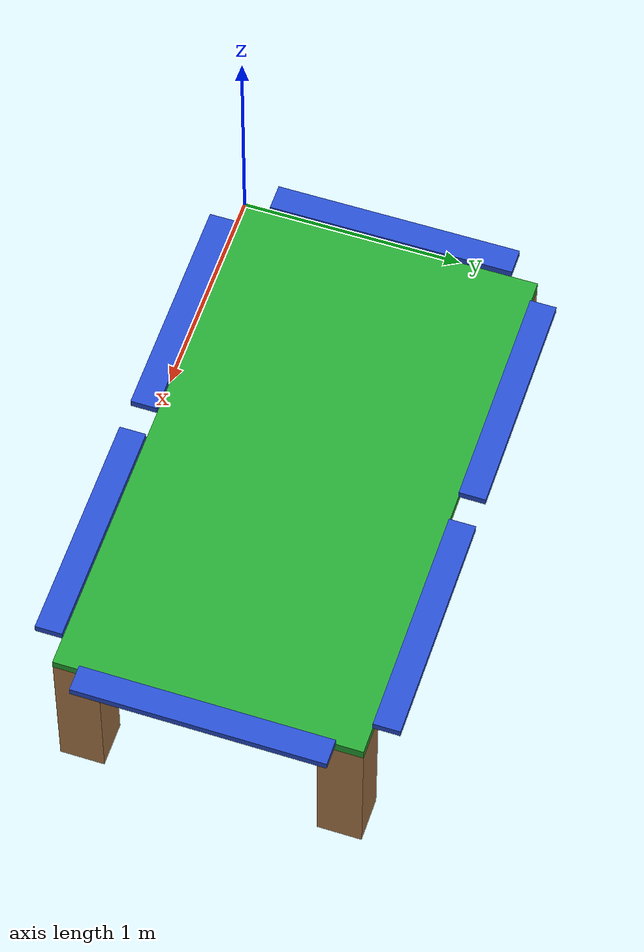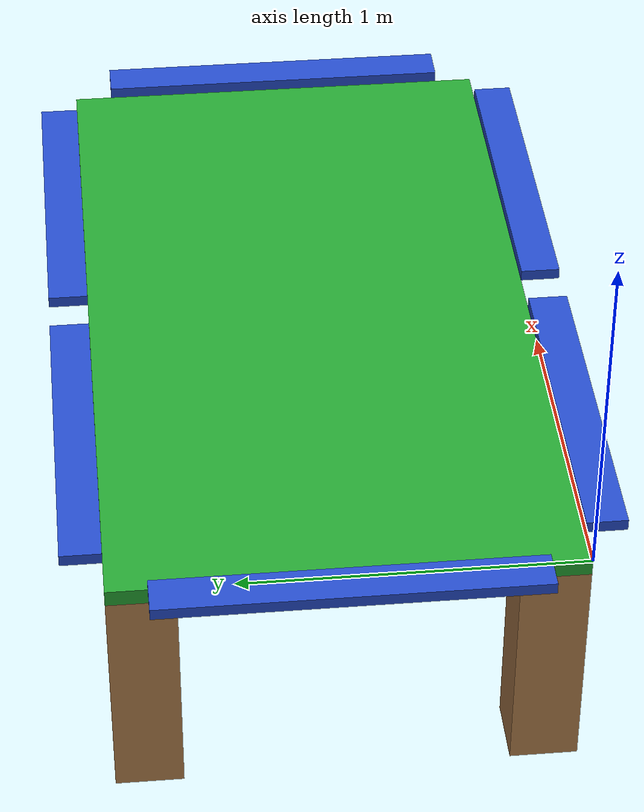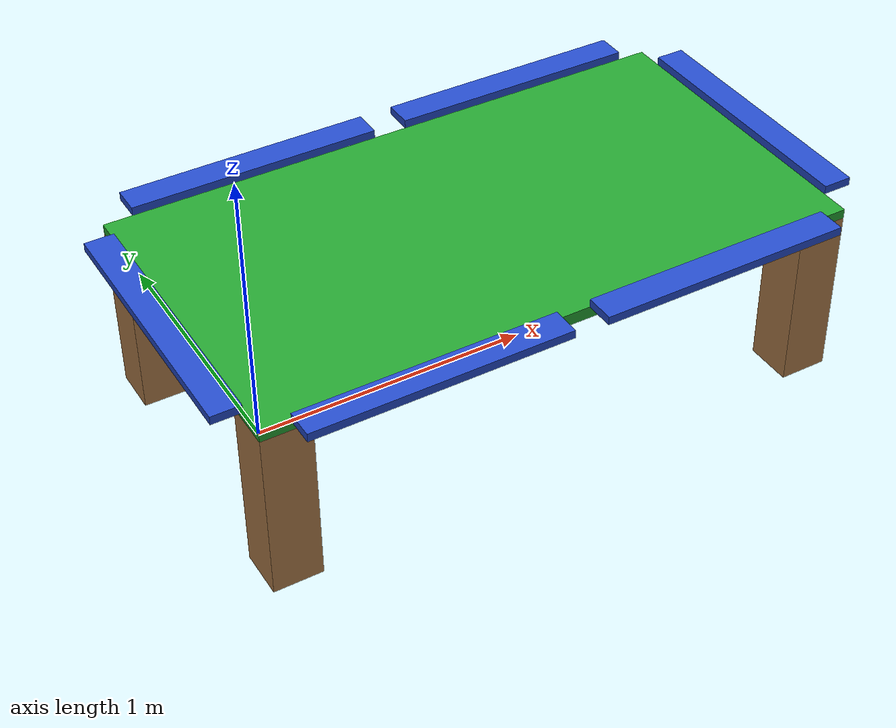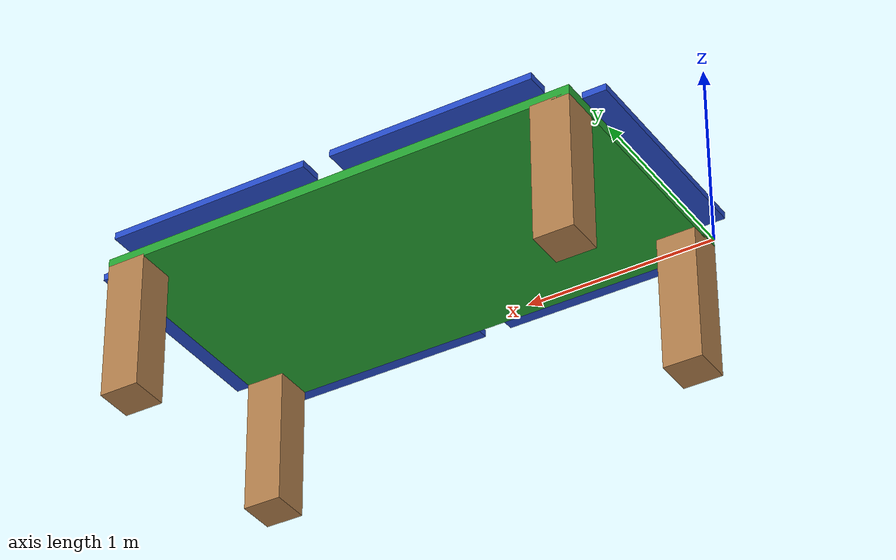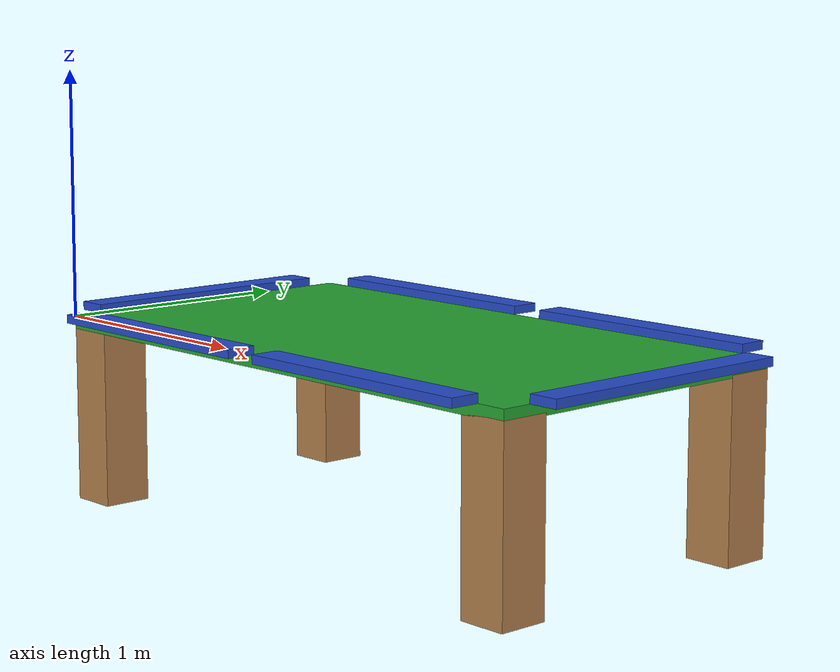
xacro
<!--xml-->
<robot name="pool_table"
       xmlns:xacro="http://ros.org/wiki/xacro"
       xmlns:sensor="http://playerstage.sourceforge.net/gazebo/xmlschema/#sensor"
       xmlns:controller="http://playerstage.sourceforge.net/gazebo/xmlschema/#controller"
       xmlns:interface="http://playerstage.sourceforge.net/gazebo/xmlschema/#interface">

  <xacro:property name="table_width" value="1.3592"/> <!-- 4ft -->
  <xacro:property name="table_length" value="2.4784"/> <!-- 8ft -->
  <xacro:property name="table_height" value=".05"/>
  <xacro:property name="side_pocket_dl" value="0.14"/>
  <xacro:property name="corner_pocket_dw" value="0.12"/>
  <xacro:property name="corner_pocket_dl" value="0.12"/>
  <xacro:property name="cushion_height" value="0.035"/>
  <xacro:property name="cushion_size" value="0.12"/>
  <xacro:property name="leg_height" value="0.72"/>

  <!-- x along the long side, y short side, z up and origin at surface of table top -->
  <link name="pool_table">
    <inertial>
      <mass value="200.0" />
      <origin xyz="${table_length/2} ${table_width/2} ${-table_height/2}" rpy="0 0 0" />
      <inertia  ixx="100.0" ixy="0.0"  ixz="0.0"  iyy="100.0"  iyz="0.0"  izz="100.0" />
    </inertial>
    <visual>
      <origin xyz="${table_length/2} ${table_width/2} ${-table_height/2}" rpy="0 0 0" />
      <geometry>
        <box size="${table_length} ${table_width} ${table_height}"/>
      </geometry>
    </visual>
    <collision>
      <origin xyz="${table_length/2} ${table_width/2} ${-table_height/2}" rpy="0 0 0" />
      <geometry>
        <box size="${table_length} ${table_width} ${table_height}"/>
      </geometry>
    </collision>
  </link>
  <gazebo reference="pool_table">
    <material>Gazebo/Green</material>
    <mu1>0.5</mu1>
    <mu2>0.5</mu2>
  </gazebo>

   <!-- with origin at final approach -->
  <joint name="leg1_joint" type="fixed" >
    <parent link="pool_table" />
    <child link="leg1" />
    <!--origin xyz="${-table_length/2} ${-table_width/2} ${-leg_height/2}" rpy="0 0 0" /-->
    <origin xyz="0.1 0.1 -0.4" rpy="0 0 0" />
  </joint>
  <link name="leg1">
    <inertial>
      <mass value="200.0" />
      <origin xyz="0 0 0" rpy="0 0 0" />
      <inertia  ixx="100.0" ixy="0.0"  ixz="0.0"  iyy="100.0"  iyz="0.0"  izz="100.0" />
    </inertial>
    <visual>
      <origin xyz="0 0 0" rpy="0 0 0" />
      <geometry>
        <box size="0.20 0.20 ${leg_height}"/>
      </geometry>
    </visual>
    <collision>
      <origin xyz="0 0 0" rpy="0 0 0" />
      <geometry>
        <box size="0.20 0.20 ${leg_height}"/>
      </geometry>
    </collision>
  </link>
  <gazebo reference="leg1">
    <material>Gazebo/Wood</material>
    <mu1>50.0</mu1>
    <mu2>50.0</mu2>
    <kp>1000000.0</kp>
    <kd>1.0</kd>
  </gazebo>

  <!-- with origin at final approach -->
  <joint name="leg2_joint" type="fixed" >
    <parent link="pool_table" />
    <child link="leg2" />
    <origin xyz="${table_length-0.1} 0.1 -0.4" rpy="0 0 0" />
  </joint>
  <link name="leg2">
    <inertial>
      <mass value="200.0" />
      <origin xyz="0 0 0" rpy="0 0 0" />
      <inertia  ixx="100.0" ixy="0.0"  ixz="0.0"  iyy="100.0"  iyz="0.0"  izz="100.0" />
    </inertial>
    <visual>
      <origin xyz="0 0 0" rpy="0 0 0" />
      <geometry>
        <box size="0.20 0.20 ${leg_height}"/>
      </geometry>
    </visual>
    <collision>
      <origin xyz="0 0 0" rpy="0 0 0" />
      <geometry>
        <box size="0.20 0.20 ${leg_height}"/>
      </geometry>
    </collision>
  </link>
  <gazebo reference="leg2">
    <material>Gazebo/Wood</material>
    <mu1>50.0</mu1>
    <mu2>50.0</mu2>
    <kp>1000000.0</kp>
    <kd>1.0</kd>
  </gazebo>

<!-- with origin at final approach -->
  <joint name="leg3_joint" type="fixed" >
    <parent link="pool_table" />
    <child link="leg3" />
    <!--origin xyz="${-table_length/2} ${-table_width/2} ${-leg_height/2}" rpy="0 0 0" /-->
    <origin xyz="0.1 ${table_width-0.1} -0.4" rpy="0 0 0" />
  </joint>
  <link name="leg3">
    <inertial>
      <mass value="200.0" />
      <origin xyz="0 0 0" rpy="0 0 0" />
      <inertia  ixx="100.0" ixy="0.0"  ixz="0.0"  iyy="100.0"  iyz="0.0"  izz="100.0" />
    </inertial>
    <visual>
      <origin xyz="0 0 0" rpy="0 0 0" />
      <geometry>
        <box size="0.20 0.20 ${leg_height}"/>
      </geometry>
    </visual>
    <collision>
      <origin xyz="0 0 0" rpy="0 0 0" />
      <geometry>
        <box size="0.20 0.20 ${leg_height}"/>
      </geometry>
    </collision>
  </link>
  <gazebo reference="leg3">
    <material>Gazebo/Wood</material>
    <mu1>50.0</mu1>
    <mu2>50.0</mu2>
    <kp>1000000.0</kp>
    <kd>1.0</kd>
  </gazebo>

  <!-- with origin at final approach -->
  <joint name="leg4_joint" type="fixed" >
    <parent link="pool_table" />
    <child link="leg4" />
    <!--origin xyz="${-table_length/2} ${-table_width/2} ${-leg_height/2}" rpy="0 0 0" /-->
    <origin xyz="${table_length - 0.1} ${table_width-0.1} -0.4" rpy="0 0 0" />
  </joint>
  <link name="leg4">
    <inertial>
      <mass value="200.0" />
      <origin xyz="0 0 0" rpy="0 0 0" />
      <inertia  ixx="100.0" ixy="0.0"  ixz="0.0"  iyy="100.0"  iyz="0.0"  izz="100.0" />
    </inertial>
    <visual>
      <origin xyz="0 0 0" rpy="0 0 0" />
      <geometry>
        <box size="0.20 0.20 ${leg_height}"/>
      </geometry>
    </visual>
    <collision>
      <origin xyz="0 0 0" rpy="0 0 0" />
      <geometry>
        <box size="0.20 0.20 ${leg_height}"/>
      </geometry>
    </collision>
  </link>
  <gazebo reference="leg4">
    <material>Gazebo/Wood</material>
    <mu1>50.0</mu1>
    <mu2>50.0</mu2>
    <kp>1000000.0</kp>
    <kd>1.0</kd>
  </gazebo>

  <!-- with origin at final approach -->
  <joint name="cushion_base_joint" type="fixed" >
    <parent link="pool_table" />
    <child link="cushion_base" />
    <origin xyz="0 0 0" rpy="0 0 0" />
  </joint>
  <link name="cushion_base">
    <inertial>
      <mass value="200.0" />
      <origin xyz="${-cushion_size/2} ${table_width/2} ${cushion_height/2}" rpy="0 0 0" />
      <inertia  ixx="100.0" ixy="0.0"  ixz="0.0"  iyy="100.0"  iyz="0.0"  izz="100.0" />
    </inertial>
    <visual>
      <origin xyz="${-cushion_size/2} ${table_width/2} ${cushion_height/2}" rpy="0 0 0" />
      <geometry>
        <box size="${cushion_size} ${table_width-2*corner_pocket_dw} ${cushion_height}"/>
      </geometry>
    </visual>
    <collision>
      <origin xyz="${-cushion_size/2} ${table_width/2} ${cushion_height/2}" rpy="0 0 0" />
      <geometry>
        <box size="${cushion_size} ${table_width-2*corner_pocket_dw} ${cushion_height}"/>
      </geometry>
    </collision>
  </link>
  <gazebo reference="cushion_base">
    <material>Gazebo/Blue</material>
  </gazebo>

  <joint name="cushion_crosswind_joint" type="fixed" >
    <parent link="pool_table" />
    <child link="cushion_crosswind" />
    <origin xyz="0 0 0" rpy="0 0 0" />
  </joint>
  <link name="cushion_crosswind">
    <inertial>
      <mass value="200.0" />
      <origin xyz="${table_length+cushion_size/2} ${table_width/2} ${cushion_height/2}" rpy="0 0 0" />
      <inertia  ixx="100.0" ixy="0.0"  ixz="0.0"  iyy="100.0"  iyz="0.0"  izz="100.0" />
    </inertial>
    <visual>
      <origin xyz="${table_length+cushion_size/2} ${table_width/2} ${cushion_height/2}" rpy="0 0 0" />
      <geometry>
        <box size="${cushion_size} ${table_width-2*corner_pocket_dw} ${cushion_height}"/>
      </geometry>
    </visual>
    <collision>
      <origin xyz="${table_length+cushion_size/2} ${table_width/2} ${cushion_height/2}" rpy="0 0 0" />
      <geometry>
        <box size="${cushion_size} ${table_width-2*corner_pocket_dw} ${cushion_height}"/>
      </geometry>
    </collision>
  </link>
  <gazebo reference="cushion_crosswind">
    <material>Gazebo/Blue</material>
  </gazebo>

  <joint name="cushion_entry_joint" type="fixed" >
    <parent link="pool_table" />
    <child link="cushion_entry" />
    <origin xyz="0 0 0" rpy="0 0 0" />
  </joint>
  <link name="cushion_entry">
    <inertial>
      <mass value="200.0" />
      <origin xyz="${0.75*(table_length-side_pocket_dl-2*corner_pocket_dl)+corner_pocket_dl+side_pocket_dl} ${table_width+cushion_size/2} ${cushion_height/2}" rpy="0 0 0" />
      <inertia  ixx="100.0" ixy="0.0"  ixz="0.0"  iyy="100.0"  iyz="0.0"  izz="100.0" />
    </inertial>
    <visual>
      <origin xyz="${0.75*(table_length-side_pocket_dl-2*corner_pocket_dl)+corner_pocket_dl+side_pocket_dl} ${table_width+cushion_size/2} ${cushion_height/2}" rpy="0 0 0" />
      <geometry>
        <box size="${0.5*(table_length-side_pocket_dl-2*corner_pocket_dl)} ${cushion_size} ${cushion_height}"/>
      </geometry>
    </visual>
    <collision>
      <origin xyz="${0.75*(table_length-side_pocket_dl-2*corner_pocket_dl)+corner_pocket_dl+side_pocket_dl} ${table_width+cushion_size/2} ${cushion_height/2}" rpy="0 0 0" />
      <geometry>
        <box size="${0.5*(table_length-side_pocket_dl-2*corner_pocket_dl)} ${cushion_size} ${cushion_height}"/>
      </geometry>
    </collision>
  </link>
  <gazebo reference="cushion_entry">
    <material>Gazebo/Blue</material>
  </gazebo>

  <joint name="cushion_downwind_joint" type="fixed" >
    <parent link="pool_table" />
    <child link="cushion_downwind" />
    <origin xyz="0 0 0" rpy="0 0 0" />
  </joint>
  <link name="cushion_downwind">
    <inertial>
      <mass value="200.0" />
      <origin xyz="${0.25*(table_length-side_pocket_dl-2*corner_pocket_dl)+corner_pocket_dl} ${table_width+cushion_size/2} ${cushion_height/2}" rpy="0 0 0" />
      <inertia  ixx="100.0" ixy="0.0"  ixz="0.0"  iyy="100.0"  iyz="0.0"  izz="100.0" />
    </inertial>
    <visual>
      <origin xyz="${0.25*(table_length-side_pocket_dl-2*corner_pocket_dl)+corner_pocket_dl} ${table_width+cushion_size/2} ${cushion_height/2}" rpy="0 0 0" />
      <geometry>
        <box size="${0.5*(table_length-side_pocket_dl-2*corner_pocket_dl)} ${cushion_size} ${cushion_height}"/>
      </geometry>
    </visual>
    <collision>
      <origin xyz="${0.25*(table_length-side_pocket_dl-2*corner_pocket_dl)+corner_pocket_dl} ${table_width+cushion_size/2} ${cushion_height/2}" rpy="0 0 0" />
      <geometry>
        <box size="${0.5*(table_length-side_pocket_dl-2*corner_pocket_dl)} ${cushion_size} ${cushion_height}"/>
      </geometry>
    </collision>
  </link>
  <gazebo reference="cushion_downwind">
    <material>Gazebo/Blue</material>
  </gazebo>

  <joint name="cushion_upwind_joint" type="fixed" >
    <parent link="pool_table" />
    <child link="cushion_upwind" />
    <origin xyz="0 0 0" rpy="0 0 0" />
  </joint>
  <link name="cushion_upwind">
    <inertial>
      <mass value="200.0" />
      <origin xyz="${0.75*(table_length-side_pocket_dl-2*corner_pocket_dl)+corner_pocket_dl+side_pocket_dl} ${-cushion_size/2} ${cushion_height/2}" rpy="0 0 0" />
      <inertia  ixx="100.0" ixy="0.0"  ixz="0.0"  iyy="100.0"  iyz="0.0"  izz="100.0" />
    </inertial>
    <visual>
      <origin xyz="${0.75*(table_length-side_pocket_dl-2*corner_pocket_dl)+corner_pocket_dl+side_pocket_dl} ${-cushion_size/2} ${cushion_height/2}" rpy="0 0 0" />
      <geometry>
        <box size="${0.5*(table_length-side_pocket_dl-2*corner_pocket_dl)} ${cushion_size} ${cushion_height}"/>
      </geometry>
    </visual>
    <collision>
      <origin xyz="${0.75*(table_length-side_pocket_dl-2*corner_pocket_dl)+corner_pocket_dl+side_pocket_dl} ${-cushion_size/2} ${cushion_height/2}" rpy="0 0 0" />
      <geometry>
        <box size="${0.5*(table_length-side_pocket_dl-2*corner_pocket_dl)} ${cushion_size} ${cushion_height}"/>
      </geometry>
    </collision>
  </link>
  <gazebo reference="cushion_upwind">
    <material>Gazebo/Blue</material>
  </gazebo>

  <joint name="cushion_final_joint" type="fixed" >
    <parent link="pool_table" />
    <child link="cushion_final" />
    <origin xyz="0 0 0" rpy="0 0 0" />
  </joint>
  <link name="cushion_final">
    <inertial>
      <mass value="200.0" />
      <origin xyz="${0.25*(table_length-side_pocket_dl-2*corner_pocket_dl)+corner_pocket_dl} ${-cushion_size/2} ${cushion_height/2}" rpy="0 0 0" />
      <inertia  ixx="100.0" ixy="0.0"  ixz="0.0"  iyy="100.0"  iyz="0.0"  izz="100.0" />
    </inertial>
    <visual>
      <origin xyz="${0.25*(table_length-side_pocket_dl-2*corner_pocket_dl)+corner_pocket_dl} ${-cushion_size/2} ${cushion_height/2}" rpy="0 0 0" />
      <geometry>
        <box size="${0.5*(table_length-side_pocket_dl-2*corner_pocket_dl)} ${cushion_size} ${cushion_height}"/>
      </geometry>
    </visual>
    <collision>
      <origin xyz="${0.25*(table_length-side_pocket_dl-2*corner_pocket_dl)+corner_pocket_dl} ${-cushion_size/2} ${cushion_height/2}" rpy="0 0 0" />
      <geometry>
        <box size="${0.5*(table_length-side_pocket_dl-2*corner_pocket_dl)} ${cushion_size} ${cushion_height}"/>
      </geometry>
    </collision>
  </link>
  <gazebo reference="cushion_final">
    <material>Gazebo/Blue</material>
  </gazebo>

  <gazebo>
    <!-- gazebo_ros_p3d for position groundtruth -->
    <controller:gazebo_ros_p3d name="p3d_pool_table_controller" plugin="libgazebo_ros_p3d.so">
        <alwaysOn>true</alwaysOn>
        <updateRate>100.0</updateRate>
        <bodyName>pool_table</bodyName>
        <topicName>pool_table_pose_ground_truth</topicName>
        <frameName>base_link</frameName>
        <interface:position name="p3d_pool_table_position"/>
    </controller:gazebo_ros_p3d>
    <static>true</static>
  </gazebo>

</robot>
